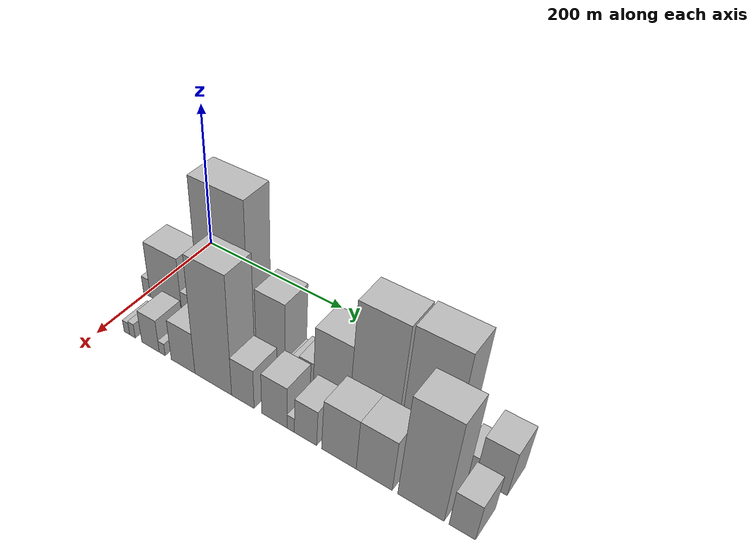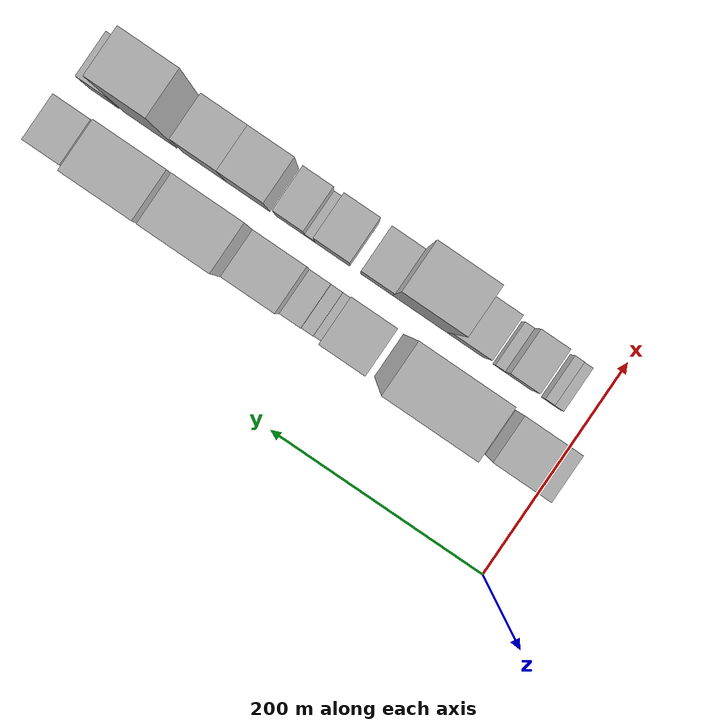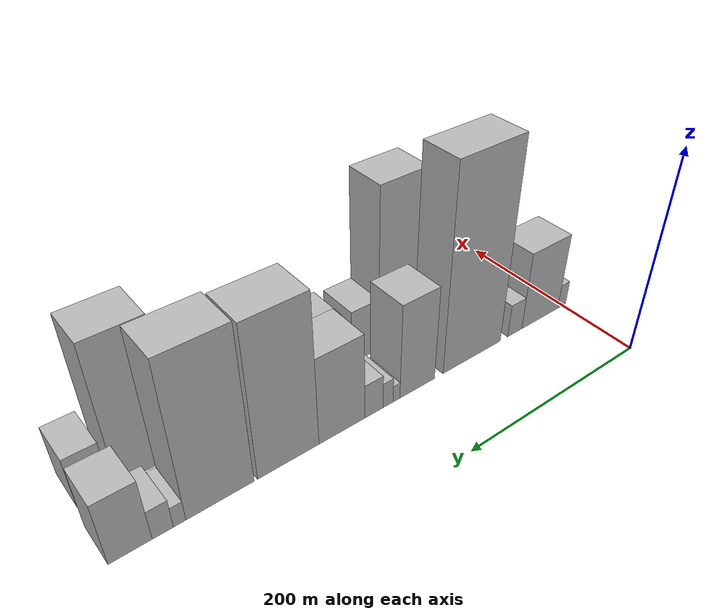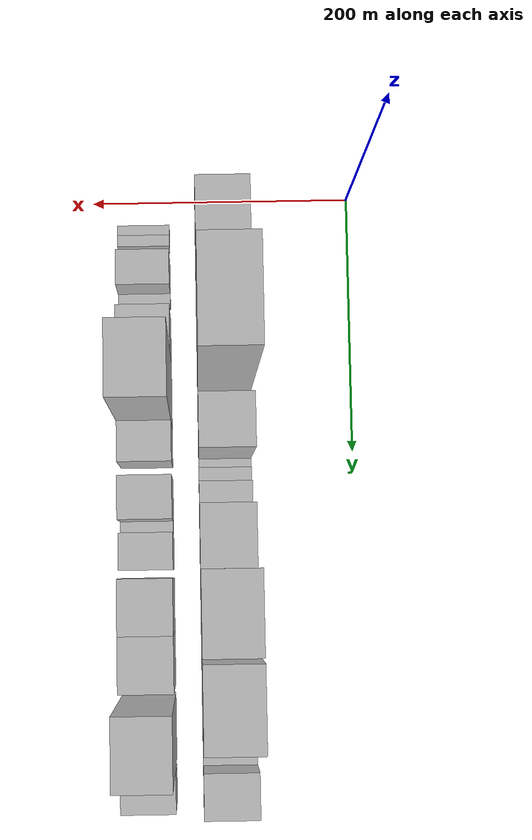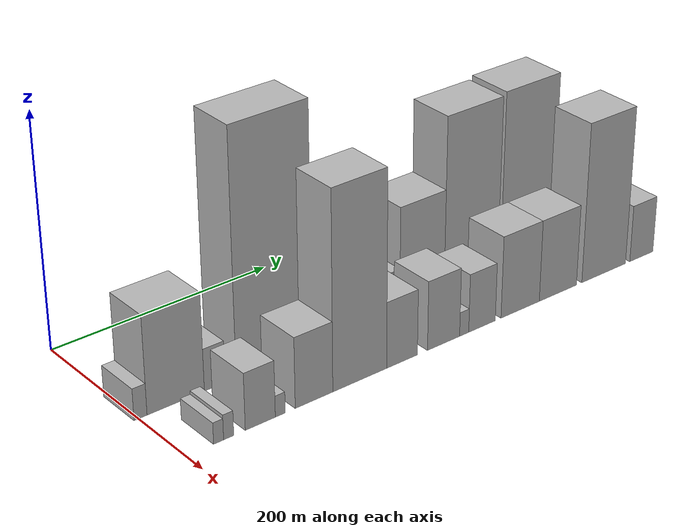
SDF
<sdf version="1.6">
 <world name="default">
  <model name="building_14">
   <static>1</static>
   <pose>100.0000 1.6245 0 0.000000 0.000000 0.000000</pose>
   <link name="link">
    <pose>0 0 13.50 0 0 0</pose>
    <collision name="collision"><geometry><box><size>40.0000 11.1606 27.0000</size></box></geometry></collision>
    <visual name="visual">
     <cast_shadows>0</cast_shadows>
     <geometry><box><size>40.0000 11.1606 27.0000</size></box></geometry>
     <material>
      <script>
       <uri>model://HANNAS_wall/materials/scripts</uri>
       <uri>model://HANNAS_wall/materials/textures</uri>
       <name>vrc/HANNAS_wall</name>
      </script>
     </material>
    </visual>
   </link>
  </model>
  <model name="building_15">
   <static>1</static>
   <pose>100.0000 32.2557 0 0.000000 0.000000 0.000000</pose>
   <link name="link">
    <pose>0 0 42.00 0 0 0</pose>
    <collision name="collision"><geometry><box><size>40.0000 50.1018 84.0000</size></box></geometry></collision>
    <visual name="visual">
     <cast_shadows>0</cast_shadows>
     <geometry><box><size>40.0000 50.1018 84.0000</size></box></geometry>
     <material>
      <script>
       <uri>model://HANNAS_wall/materials/scripts</uri>
       <uri>model://HANNAS_wall/materials/textures</uri>
       <name>vrc/HANNAS_wall</name>
      </script>
     </material>
    </visual>
   </link>
  </model>
  <model name="building_16">
   <static>1</static>
   <pose>100.0000 66.6126 0 0.000000 0.000000 0.000000</pose>
   <link name="link">
    <pose>0 0 18.00 0 0 0</pose>
    <collision name="collision"><geometry><box><size>40.0000 18.6121 36.0000</size></box></geometry></collision>
    <visual name="visual">
     <cast_shadows>0</cast_shadows>
     <geometry><box><size>40.0000 18.6121 36.0000</size></box></geometry>
     <material>
      <script>
       <uri>model://HANNAS_wall/materials/scripts</uri>
       <uri>model://HANNAS_wall/materials/textures</uri>
       <name>vrc/HANNAS_wall</name>
      </script>
     </material>
    </visual>
   </link>
  </model>
  <model name="building_17">
   <static>1</static>
   <pose>100.0000 121.2676 0 0.000000 0.000000 0.000000</pose>
   <link name="link">
    <pose>0 0 103.50 0 0 0</pose>
    <collision name="collision"><geometry><box><size>40.0000 70.6977 207.0000</size></box></geometry></collision>
    <visual name="visual">
     <cast_shadows>0</cast_shadows>
     <geometry><box><size>40.0000 70.6977 207.0000</size></box></geometry>
     <material>
      <script>
       <uri>model://HANNAS_wall/materials/scripts</uri>
       <uri>model://HANNAS_wall/materials/textures</uri>
       <name>vrc/HANNAS_wall</name>
      </script>
     </material>
    </visual>
   </link>
  </model>
  <model name="building_18">
   <static>1</static>
   <pose>100.0000 186.2525 0 0.000000 0.000000 0.000000</pose>
   <link name="link">
    <pose>0 0 49.50 0 0 0</pose>
    <collision name="collision"><geometry><box><size>40.0000 39.2721 99.0000</size></box></geometry></collision>
    <visual name="visual">
     <cast_shadows>0</cast_shadows>
     <geometry><box><size>40.0000 39.2721 99.0000</size></box></geometry>
     <material>
      <script>
       <uri>model://HANNAS_wall/materials/scripts</uri>
       <uri>model://HANNAS_wall/materials/textures</uri>
       <name>vrc/HANNAS_wall</name>
      </script>
     </material>
    </visual>
   </link>
  </model>
  <model name="building_19">
   <static>1</static>
   <pose>100.0000 209.5763 0 0.000000 0.000000 0.000000</pose>
   <link name="link">
    <pose>0 0 9.00 0 0 0</pose>
    <collision name="collision"><geometry><box><size>40.0000 7.3756 18.0000</size></box></geometry></collision>
    <visual name="visual">
     <cast_shadows>0</cast_shadows>
     <geometry><box><size>40.0000 7.3756 18.0000</size></box></geometry>
     <material>
      <script>
       <uri>model://HANNAS_wall/materials/scripts</uri>
       <uri>model://HANNAS_wall/materials/textures</uri>
       <name>vrc/HANNAS_wall</name>
      </script>
     </material>
    </visual>
   </link>
  </model>
  <model name="building_20">
   <static>1</static>
   <pose>100.0000 218.6979 0 0.000000 0.000000 0.000000</pose>
   <link name="link">
    <pose>0 0 13.50 0 0 0</pose>
    <collision name="collision"><geometry><box><size>40.0000 10.8678 27.0000</size></box></geometry></collision>
    <visual name="visual">
     <cast_shadows>0</cast_shadows>
     <geometry><box><size>40.0000 10.8678 27.0000</size></box></geometry>
     <material>
      <script>
       <uri>model://HANNAS_wall/materials/scripts</uri>
       <uri>model://HANNAS_wall/materials/textures</uri>
       <name>vrc/HANNAS_wall</name>
      </script>
     </material>
    </visual>
   </link>
  </model>
  <model name="building_21">
   <static>1</static>
   <pose>100.0000 233.8165 0 0.000000 0.000000 0.000000</pose>
   <link name="link">
    <pose>0 0 18.00 0 0 0</pose>
    <collision name="collision"><geometry><box><size>40.0000 19.3694 36.0000</size></box></geometry></collision>
    <visual name="visual">
     <cast_shadows>0</cast_shadows>
     <geometry><box><size>40.0000 19.3694 36.0000</size></box></geometry>
     <material>
      <script>
       <uri>model://HANNAS_wall/materials/scripts</uri>
       <uri>model://HANNAS_wall/materials/textures</uri>
       <name>vrc/HANNAS_wall</name>
      </script>
     </material>
    </visual>
   </link>
  </model>
  <model name="building_22">
   <static>1</static>
   <pose>100.0000 266.4985 0 0.000000 0.000000 0.000000</pose>
   <link name="link">
    <pose>0 0 45.00 0 0 0</pose>
    <collision name="collision"><geometry><box><size>40.0000 45.9946 90.0000</size></box></geometry></collision>
    <visual name="visual">
     <cast_shadows>0</cast_shadows>
     <geometry><box><size>40.0000 45.9946 90.0000</size></box></geometry>
     <material>
      <script>
       <uri>model://HANNAS_wall/materials/scripts</uri>
       <uri>model://HANNAS_wall/materials/textures</uri>
       <name>vrc/HANNAS_wall</name>
      </script>
     </material>
    </visual>
   </link>
  </model>
  <model name="building_23">
   <static>1</static>
   <pose>100.0000 318.1298 0 0.000000 0.000000 0.000000</pose>
   <link name="link">
    <pose>0 0 76.50 0 0 0</pose>
    <collision name="collision"><geometry><box><size>40.0000 57.2680 153.0000</size></box></geometry></collision>
    <visual name="visual">
     <cast_shadows>0</cast_shadows>
     <geometry><box><size>40.0000 57.2680 153.0000</size></box></geometry>
     <material>
      <script>
       <uri>model://HANNAS_wall/materials/scripts</uri>
       <uri>model://HANNAS_wall/materials/textures</uri>
       <name>vrc/HANNAS_wall</name>
      </script>
     </material>
    </visual>
   </link>
  </model>
  <model name="building_24">
   <static>1</static>
   <pose>100.0000 378.6018 0 0.000000 0.000000 0.000000</pose>
   <link name="link">
    <pose>0 0 78.00 0 0 0</pose>
    <collision name="collision"><geometry><box><size>40.0000 57.6761 156.0000</size></box></geometry></collision>
    <visual name="visual">
     <cast_shadows>0</cast_shadows>
     <geometry><box><size>40.0000 57.6761 156.0000</size></box></geometry>
     <material>
      <script>
       <uri>model://HANNAS_wall/materials/scripts</uri>
       <uri>model://HANNAS_wall/materials/textures</uri>
       <name>vrc/HANNAS_wall</name>
      </script>
     </material>
    </visual>
   </link>
  </model>
  <model name="building_25">
   <static>1</static>
   <pose>100.0000 412.4265 0 0.000000 0.000000 0.000000</pose>
   <link name="link">
    <pose>0 0 10.50 0 0 0</pose>
    <collision name="collision"><geometry><box><size>40.0000 9.9733 21.0000</size></box></geometry></collision>
    <visual name="visual">
     <cast_shadows>0</cast_shadows>
     <geometry><box><size>40.0000 9.9733 21.0000</size></box></geometry>
     <material>
      <script>
       <uri>model://HANNAS_wall/materials/scripts</uri>
       <uri>model://HANNAS_wall/materials/textures</uri>
       <name>vrc/HANNAS_wall</name>
      </script>
     </material>
    </visual>
   </link>
  </model>
  <model name="building_26">
   <static>1</static>
   <pose>100.0000 425.7243 0 0.000000 0.000000 0.000000</pose>
   <link name="link">
    <pose>0 0 15.00 0 0 0</pose>
    <collision name="collision"><geometry><box><size>40.0000 16.6223 30.0000</size></box></geometry></collision>
    <visual name="visual">
     <cast_shadows>0</cast_shadows>
     <geometry><box><size>40.0000 16.6223 30.0000</size></box></geometry>
     <material>
      <script>
       <uri>model://HANNAS_wall/materials/scripts</uri>
       <uri>model://HANNAS_wall/materials/textures</uri>
       <name>vrc/HANNAS_wall</name>
      </script>
     </material>
    </visual>
   </link>
  </model>
  <model name="building_27">
   <static>1</static>
   <pose>100.0000 450.6406 0 0.000000 0.000000 0.000000</pose>
   <link name="link">
    <pose>0 0 31.50 0 0 0</pose>
    <collision name="collision"><geometry><box><size>40.0000 33.2103 63.0000</size></box></geometry></collision>
    <visual name="visual">
     <cast_shadows>0</cast_shadows>
     <geometry><box><size>40.0000 33.2103 63.0000</size></box></geometry>
     <material>
      <script>
       <uri>model://HANNAS_wall/materials/scripts</uri>
       <uri>model://HANNAS_wall/materials/textures</uri>
       <name>vrc/HANNAS_wall</name>
      </script>
     </material>
    </visual>
   </link>
  </model>
  <model name="building_40">
   <static>1</static>
   <pose>160.0000 27.5160 0 0.000000 0.000000 0.000000</pose>
   <link name="link">
    <pose>0 0 9.00 0 0 0</pose>
    <collision name="collision"><geometry><box><size>40.0000 8.6252 18.0000</size></box></geometry></collision>
    <visual name="visual">
     <cast_shadows>0</cast_shadows>
     <geometry><box><size>40.0000 8.6252 18.0000</size></box></geometry>
     <material>
      <script>
       <uri>model://HANNAS_wall/materials/scripts</uri>
       <uri>model://HANNAS_wall/materials/textures</uri>
       <name>vrc/HANNAS_wall</name>
      </script>
     </material>
    </visual>
   </link>
  </model>
  <model name="building_41">
   <static>1</static>
   <pose>160.0000 36.2414 0 0.000000 0.000000 0.000000</pose>
   <link name="link">
    <pose>0 0 10.50 0 0 0</pose>
    <collision name="collision"><geometry><box><size>40.0000 8.8255 21.0000</size></box></geometry></collision>
    <visual name="visual">
     <cast_shadows>0</cast_shadows>
     <geometry><box><size>40.0000 8.8255 21.0000</size></box></geometry>
     <material>
      <script>
       <uri>model://HANNAS_wall/materials/scripts</uri>
       <uri>model://HANNAS_wall/materials/textures</uri>
       <name>vrc/HANNAS_wall</name>
      </script>
     </material>
    </visual>
   </link>
  </model>
  <model name="building_42">
   <static>1</static>
   <pose>160.0000 63.9563 0 0.000000 0.000000 0.000000</pose>
   <link name="link">
    <pose>0 0 24.00 0 0 0</pose>
    <collision name="collision"><geometry><box><size>40.0000 26.6043 48.0000</size></box></geometry></collision>
    <visual name="visual">
     <cast_shadows>0</cast_shadows>
     <geometry><box><size>40.0000 26.6043 48.0000</size></box></geometry>
     <material>
      <script>
       <uri>model://HANNAS_wall/materials/scripts</uri>
       <uri>model://HANNAS_wall/materials/textures</uri>
       <name>vrc/HANNAS_wall</name>
      </script>
     </material>
    </visual>
   </link>
  </model>
  <model name="building_43">
   <static>1</static>
   <pose>160.0000 81.7181 0 0.000000 0.000000 0.000000</pose>
   <link name="link">
    <pose>0 0 9.00 0 0 0</pose>
    <collision name="collision"><geometry><box><size>40.0000 8.9193 18.0000</size></box></geometry></collision>
    <visual name="visual">
     <cast_shadows>0</cast_shadows>
     <geometry><box><size>40.0000 8.9193 18.0000</size></box></geometry>
     <material>
      <script>
       <uri>model://HANNAS_wall/materials/scripts</uri>
       <uri>model://HANNAS_wall/materials/textures</uri>
       <name>vrc/HANNAS_wall</name>
      </script>
     </material>
    </visual>
   </link>
  </model>
  <model name="building_44">
   <static>1</static>
   <pose>160.0000 112.4249 0 0.000000 0.000000 0.000000</pose>
   <link name="link">
    <pose>0 0 30.00 0 0 0</pose>
    <collision name="collision"><geometry><box><size>40.0000 34.4943 60.0000</size></box></geometry></collision>
    <visual name="visual">
     <cast_shadows>0</cast_shadows>
     <geometry><box><size>40.0000 34.4943 60.0000</size></box></geometry>
     <material>
      <script>
       <uri>model://HANNAS_wall/materials/scripts</uri>
       <uri>model://HANNAS_wall/materials/textures</uri>
       <name>vrc/HANNAS_wall</name>
      </script>
     </material>
    </visual>
   </link>
  </model>
  <model name="building_45">
   <static>1</static>
   <pose>160.0000 155.1992 0 0.000000 0.000000 0.000000</pose>
   <link name="link">
    <pose>0 0 84.00 0 0 0</pose>
    <collision name="collision"><geometry><box><size>40.0000 51.0542 168.0000</size></box></geometry></collision>
    <visual name="visual">
     <cast_shadows>0</cast_shadows>
     <geometry><box><size>40.0000 51.0542 168.0000</size></box></geometry>
     <material>
      <script>
       <uri>model://HANNAS_wall/materials/scripts</uri>
       <uri>model://HANNAS_wall/materials/textures</uri>
       <name>vrc/HANNAS_wall</name>
      </script>
     </material>
    </visual>
   </link>
  </model>
  <model name="building_46">
   <static>1</static>
   <pose>160.0000 195.7404 0 0.000000 0.000000 0.000000</pose>
   <link name="link">
    <pose>0 0 28.50 0 0 0</pose>
    <collision name="collision"><geometry><box><size>40.0000 30.0282 57.0000</size></box></geometry></collision>
    <visual name="visual">
     <cast_shadows>0</cast_shadows>
     <geometry><box><size>40.0000 30.0282 57.0000</size></box></geometry>
     <material>
      <script>
       <uri>model://HANNAS_wall/materials/scripts</uri>
       <uri>model://HANNAS_wall/materials/textures</uri>
       <name>vrc/HANNAS_wall</name>
      </script>
     </material>
    </visual>
   </link>
  </model>
  <model name="building_47">
   <static>1</static>
   <pose>160.0000 236.9155 0 0.000000 0.000000 0.000000</pose>
   <link name="link">
    <pose>0 0 30.00 0 0 0</pose>
    <collision name="collision"><geometry><box><size>40.0000 32.3220 60.0000</size></box></geometry></collision>
    <visual name="visual">
     <cast_shadows>0</cast_shadows>
     <geometry><box><size>40.0000 32.3220 60.0000</size></box></geometry>
     <material>
      <script>
       <uri>model://HANNAS_wall/materials/scripts</uri>
       <uri>model://HANNAS_wall/materials/textures</uri>
       <name>vrc/HANNAS_wall</name>
      </script>
     </material>
    </visual>
   </link>
  </model>
  <model name="building_48">
   <static>1</static>
   <pose>160.0000 257.7223 0 0.000000 0.000000 0.000000</pose>
   <link name="link">
    <pose>0 0 10.50 0 0 0</pose>
    <collision name="collision"><geometry><box><size>40.0000 9.2917 21.0000</size></box></geometry></collision>
    <visual name="visual">
     <cast_shadows>0</cast_shadows>
     <geometry><box><size>40.0000 9.2917 21.0000</size></box></geometry>
     <material>
      <script>
       <uri>model://HANNAS_wall/materials/scripts</uri>
       <uri>model://HANNAS_wall/materials/textures</uri>
       <name>vrc/HANNAS_wall</name>
      </script>
     </material>
    </visual>
   </link>
  </model>
  <model name="building_49">
   <static>1</static>
   <pose>160.0000 276.1103 0 0.000000 0.000000 0.000000</pose>
   <link name="link">
    <pose>0 0 25.50 0 0 0</pose>
    <collision name="collision"><geometry><box><size>40.0000 27.4843 51.0000</size></box></geometry></collision>
    <visual name="visual">
     <cast_shadows>0</cast_shadows>
     <geometry><box><size>40.0000 27.4843 51.0000</size></box></geometry>
     <material>
      <script>
       <uri>model://HANNAS_wall/materials/scripts</uri>
       <uri>model://HANNAS_wall/materials/textures</uri>
       <name>vrc/HANNAS_wall</name>
      </script>
     </material>
    </visual>
   </link>
  </model>
  <model name="building_50">
   <static>1</static>
   <pose>160.0000 316.2523 0 0.000000 0.000000 0.000000</pose>
   <link name="link">
    <pose>0 0 36.00 0 0 0</pose>
    <collision name="collision"><geometry><box><size>40.0000 40.7998 72.0000</size></box></geometry></collision>
    <visual name="visual">
     <cast_shadows>0</cast_shadows>
     <geometry><box><size>40.0000 40.7998 72.0000</size></box></geometry>
     <material>
      <script>
       <uri>model://HANNAS_wall/materials/scripts</uri>
       <uri>model://HANNAS_wall/materials/textures</uri>
       <name>vrc/HANNAS_wall</name>
      </script>
     </material>
    </visual>
   </link>
  </model>
  <model name="building_51">
   <static>1</static>
   <pose>160.0000 356.9860 0 0.000000 0.000000 0.000000</pose>
   <link name="link">
    <pose>0 0 36.00 0 0 0</pose>
    <collision name="collision"><geometry><box><size>40.0000 40.6676 72.0000</size></box></geometry></collision>
    <visual name="visual">
     <cast_shadows>0</cast_shadows>
     <geometry><box><size>40.0000 40.6676 72.0000</size></box></geometry>
     <material>
      <script>
       <uri>model://HANNAS_wall/materials/scripts</uri>
       <uri>model://HANNAS_wall/materials/textures</uri>
       <name>vrc/HANNAS_wall</name>
      </script>
     </material>
    </visual>
   </link>
  </model>
  <model name="building_52">
   <static>1</static>
   <pose>160.0000 408.0902 0 0.000000 0.000000 0.000000</pose>
   <link name="link">
    <pose>0 0 70.50 0 0 0</pose>
    <collision name="collision"><geometry><box><size>40.0000 49.5408 141.0000</size></box></geometry></collision>
    <visual name="visual">
     <cast_shadows>0</cast_shadows>
     <geometry><box><size>40.0000 49.5408 141.0000</size></box></geometry>
     <material>
      <script>
       <uri>model://HANNAS_wall/materials/scripts</uri>
       <uri>model://HANNAS_wall/materials/textures</uri>
       <name>vrc/HANNAS_wall</name>
      </script>
     </material>
    </visual>
   </link>
  </model>
  <model name="building_53">
   <static>1</static>
   <pose>160.0000 451.3032 0 0.000000 0.000000 0.000000</pose>
   <link name="link">
    <pose>0 0 25.50 0 0 0</pose>
    <collision name="collision"><geometry><box><size>40.0000 26.8852 51.0000</size></box></geometry></collision>
    <visual name="visual">
     <cast_shadows>0</cast_shadows>
     <geometry><box><size>40.0000 26.8852 51.0000</size></box></geometry>
     <material>
      <script>
       <uri>model://HANNAS_wall/materials/scripts</uri>
       <uri>model://HANNAS_wall/materials/textures</uri>
       <name>vrc/HANNAS_wall</name>
      </script>
     </material>
    </visual>
   </link>
  </model>
 </world>
</sdf>
